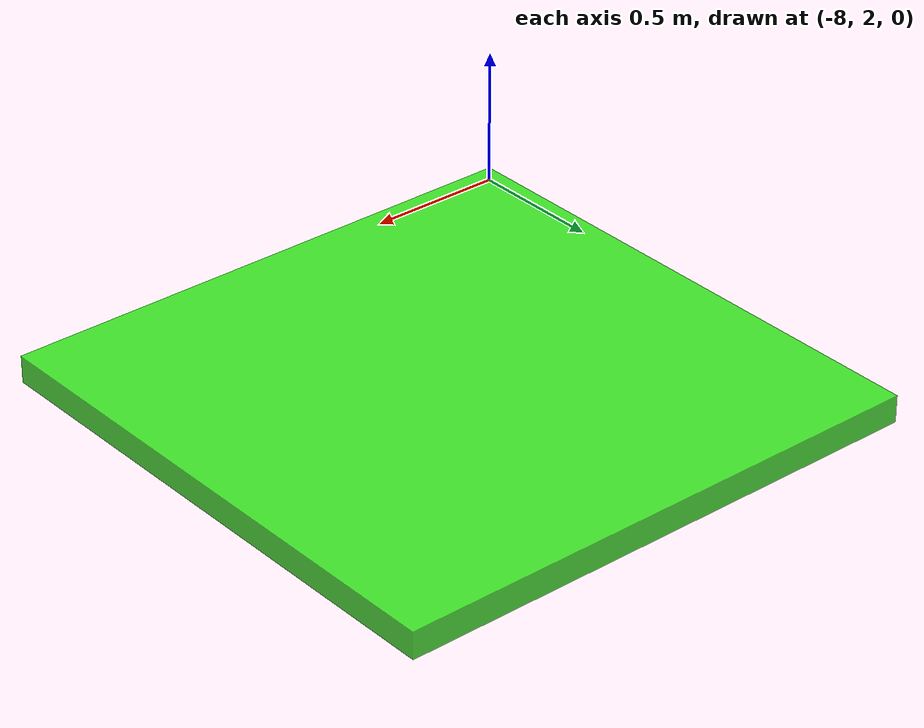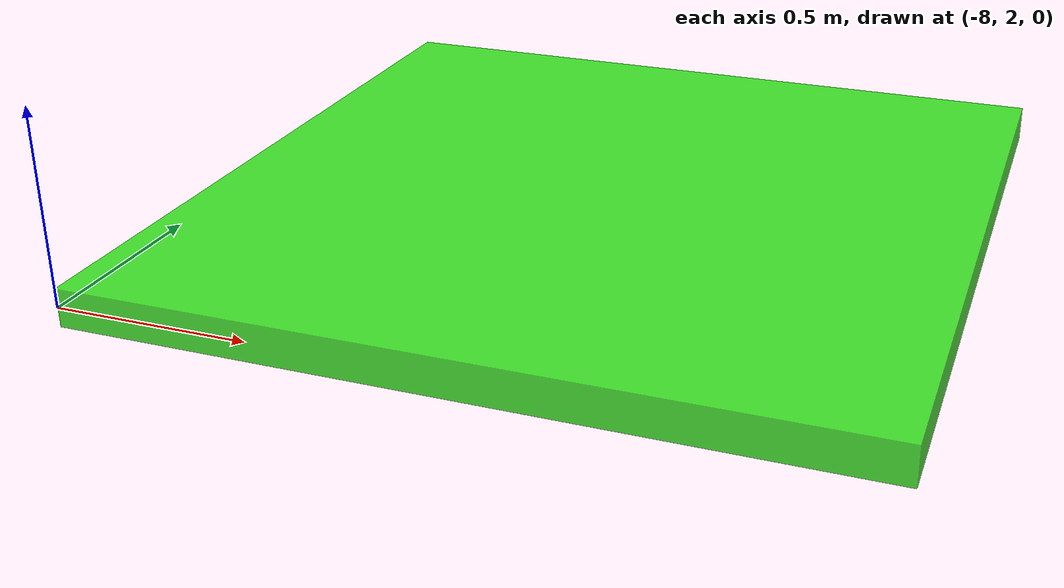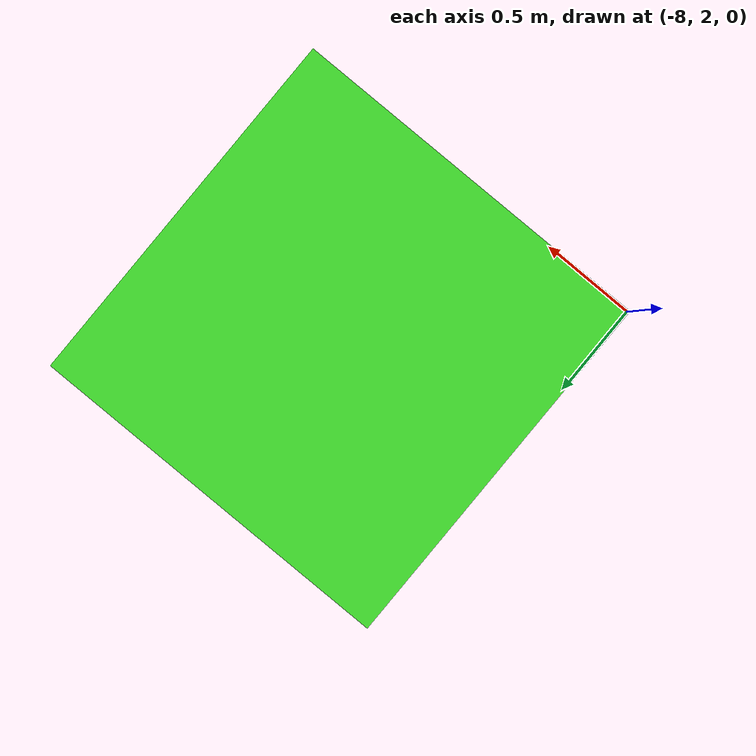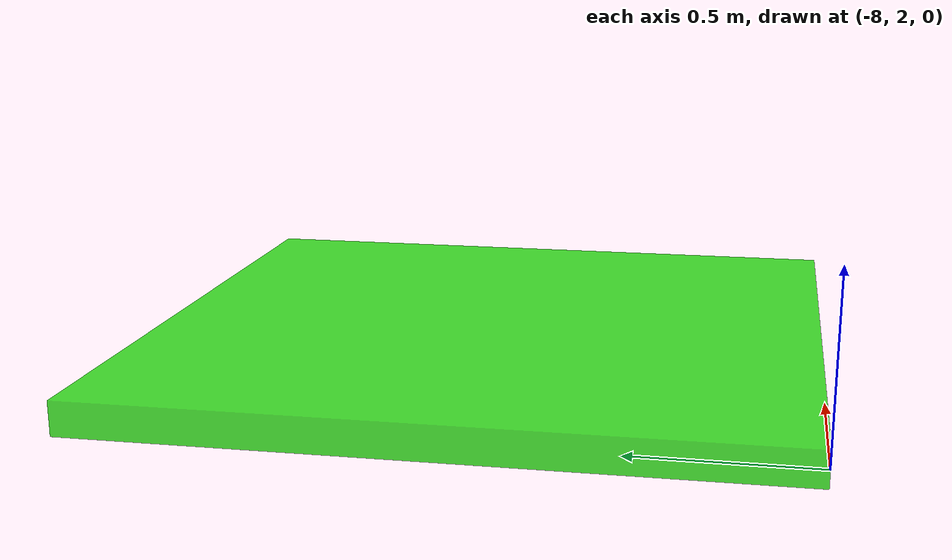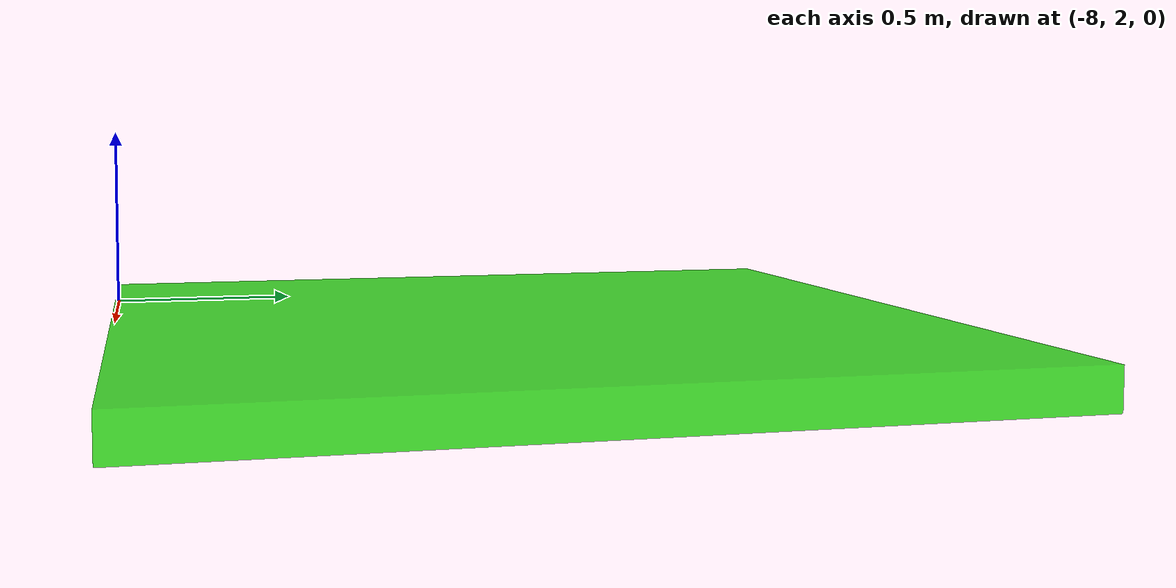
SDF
<sdf version="1.6">
  <model name="tile_-4_1">
    <pose>-7 3 0 0 0 0</pose>
      <link name="tile_-4_1">
        <pose>0 0 0 0 -0 0</pose>
        <inertial>
          <mass>260.134</mass>
          <inertia>
            <ixx>86.8209</ixx>
            <ixy>0</ixy>
            <ixz>0</ixz>
            <iyy>86.8213</iyy>
            <iyz>0</iyz>
            <izz>173.423</izz>
          </inertia>
          <pose>0 0 0 0 -0 0</pose>
        </inertial>
        <visual name='visual'>
          <geometry>
            <box>
              <size>2 2 0.1</size>
            </box>
          </geometry>
          <material>
            <ambient>0.1 0.9 0 0.8</ambient>
            <diffuse>0.1 0.9 0 0.8</diffuse>
            <specular>0.1 0.9 0 0.8</specular>
          </material>
        </visual>
        <collision name='collision'>
          <geometry>
            <box>
              <size>2 2 0.1</size>
            </box>
          </geometry>
          <surface>
            <friction>
              <ode>
                <mu>56.99999999999999</mu>
                <mu2>7.000000000000001</mu2>
              </ode>
            </friction>
            <bounce/>
            <contact/>
          </surface>
        </collision>
        <enable_wind>false</enable_wind>
      </link>
  </model>
</sdf>
